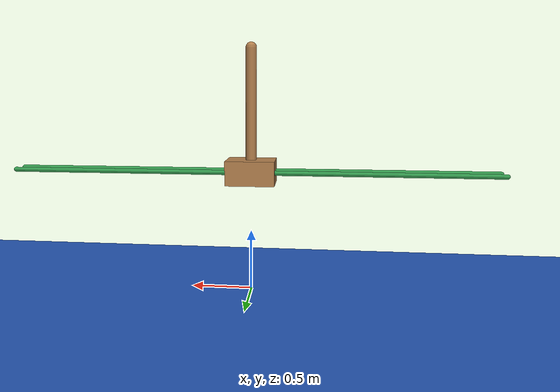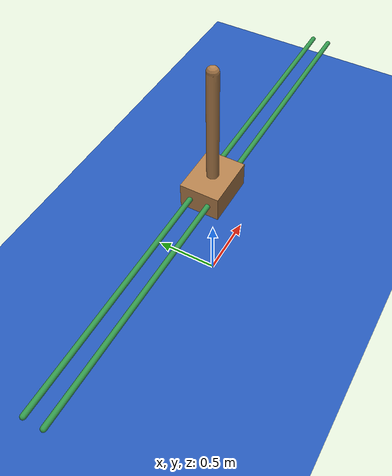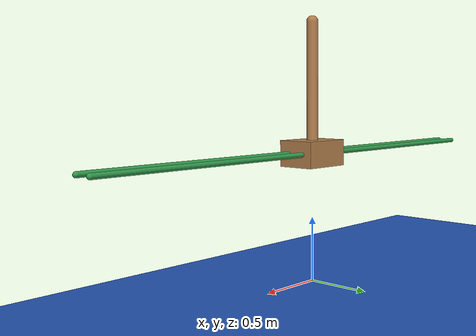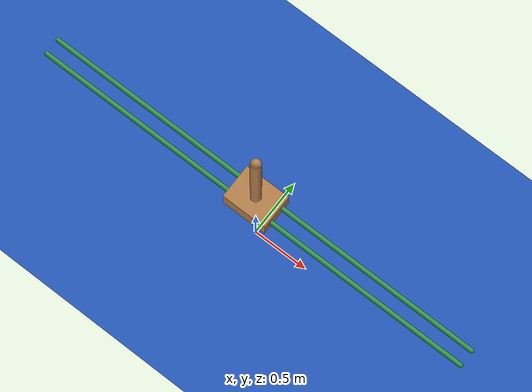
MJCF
<mujoco model="Cart-Pole Swing-Up">
  <include file="../common.xml"/>
  <include file="cartpole.xml" />

  <size memory="4K"/>

  <sensor>
    <jointpos name="slider_pos" joint="slider"/>
    <jointpos name="hinge_pos" joint="hinge_1"/>
  </sensor>
</mujoco>

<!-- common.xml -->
<mujoco>

  <visual>
    <headlight ambient=".4 .4 .4" diffuse=".8 .8 .8" specular="0.1 0.1 0.1"/>
    <map znear=".01"/>
    <quality shadowsize="2048"/>
    <global elevation="-15"/>
  </visual>

  <asset>
    <texture name="blue_grid" type="2d" builtin="checker" rgb1=".02 .14 .44" rgb2=".27 .55 1" width="300" height="300" mark="edge" markrgb="1 1 1"/>
    <material name="blue_grid" texture="blue_grid" texrepeat="1 1" texuniform="true" reflectance=".2"/>

    <texture name="grey_grid" type="2d" builtin="checker" rgb1=".26 .26 .26" rgb2=".6 .6 .6" width="300" height="300" mark="edge" markrgb="1 1 1"/>
    <material name="grey_grid" texture="grey_grid" texrepeat="1 1" texuniform="true" reflectance=".2"/>
    <texture name="skybox" type="skybox" builtin="gradient" rgb1=".66 .79 1" rgb2=".9 .91 .93" width="800" height="800"/>

    <material name="self" rgba=".7 .5 .3 1"/>
    <material name="self_default" rgba=".7 .5 .3 1"/>
    <material name="self_highlight" rgba="0 .5 .3 1"/>
    <material name="effector" rgba=".7 .4 .2 1"/>
    <material name="effector_default" rgba=".7 .4 .2 1"/>
    <material name="effector_highlight" rgba="0 .5 .3 1"/>
    <material name="decoration" rgba=".2 .6 .3 1"/>
    <material name="eye" rgba="0 .2 1 1"/>
    <material name="target" rgba=".6 .3 .3 1"/>
    <material name="target_default" rgba=".6 .3 .3 1"/>
    <material name="target_highlight" rgba=".6 .3 .3 .4"/>
    <material name="site" rgba=".5 .5 .5 .3"/>
  </asset>
</mujoco>

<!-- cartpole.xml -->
<mujoco model="Cartpole">
  <option timestep="0.01">
    <flag contact="disable"/>
  </option>

  <default>
    <default class="pole">
      <joint type="hinge" axis="0 1 0"  damping="2e-6"/>
      <geom type="capsule" fromto="0 0 0 0 0 1" size="0.045" material="self" mass=".1"/>
    </default>
  </default>

  <worldbody>
    <light name="light" pos="0 0 6"/>
    <camera name="fixed" pos="0 -4 1" zaxis="0 -1 0"/>
    <camera name="lookatcart" mode="targetbody" target="cart" pos="0 -2 2"/>
    <geom name="floor" pos="0 0 -.05" size="4 4 .2" type="plane" material="blue_grid"/>
    <geom name="rail1" type="capsule" pos="0  .07 1" zaxis="1 0 0" size="0.02 2" material="decoration" />
    <geom name="rail2" type="capsule" pos="0 -.07 1" zaxis="1 0 0" size="0.02 2" material="decoration" />
    <body name="cart" pos="0 0 1">
      <joint name="slider" type="slide" limited="true" axis="1 0 0" range="-1.8 1.8" solreflimit=".08 1" damping="1.0e-4"/>
      <geom name="cart" type="box" size="0.2 0.15 0.1" material="self"  mass="1"/>
      <site name="base" pos="0 0 0"/>
      <body name="pole_1" childclass="pole">
        <joint name="hinge_1" damping="1.0e-4"/>
        <geom name="pole_1"/>
        <site name="tip" pos="0 0 -1"/>
      </body>
    </body>
  </worldbody>

  <actuator>
    <motor name="slide" joint="slider" gear="10" ctrllimited="true" ctrlrange="-1 1" />
  </actuator>
</mujoco>
